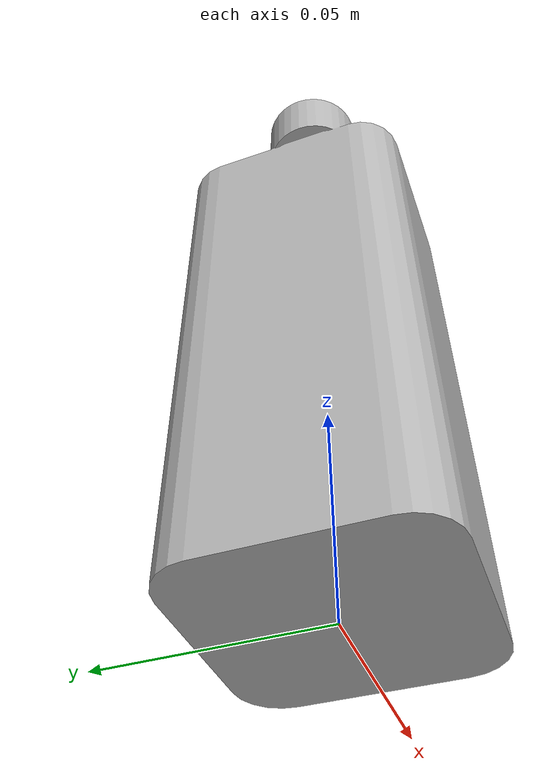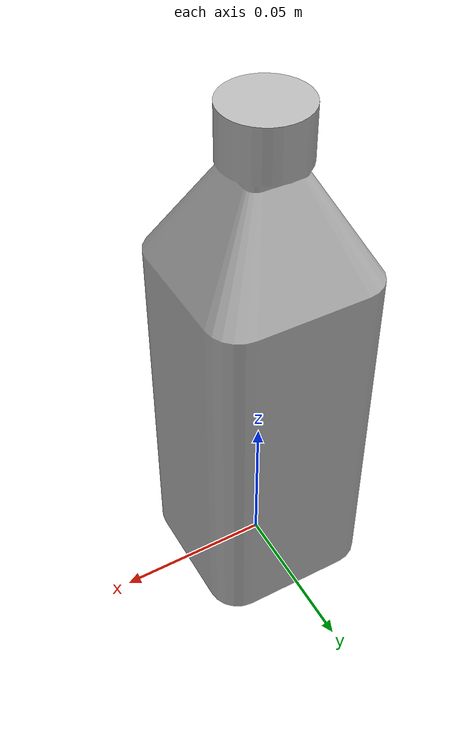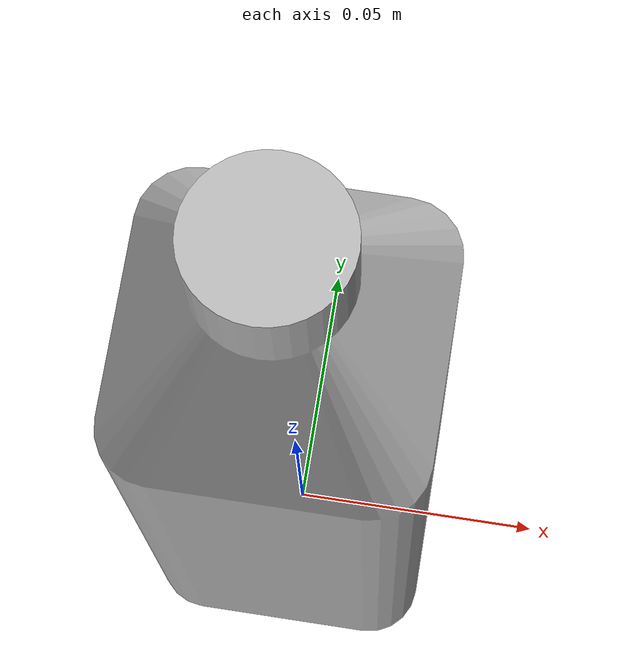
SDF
<?xml version="1.0" ?>

<sdf version="1.5">
  <model name="nrp_7eleven_bottle_juice_grape">
    <static>true</static>
    <link name="link">
      <visual name="visual">
        <geometry>
          <mesh>
            <uri>model://nrp_7eleven_bottle_juice_grape/meshes/nrp_7eleven_bottle_juice_grape.dae</uri>
          </mesh>
        </geometry>
        <material>
          <emissive>0.5 0.5 0.5 1</emissive>
        </material>
      </visual>
    </link>
  </model>
</sdf>
